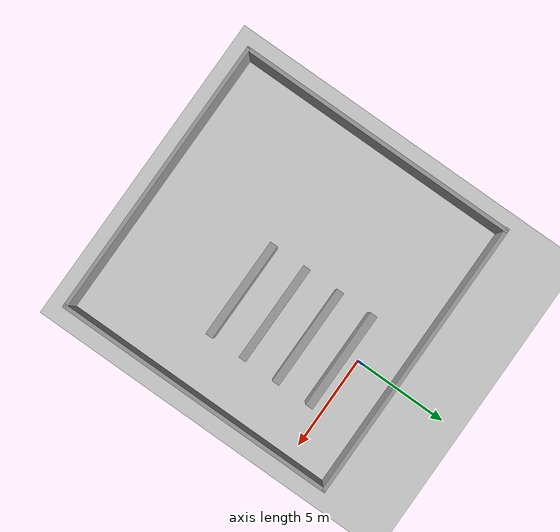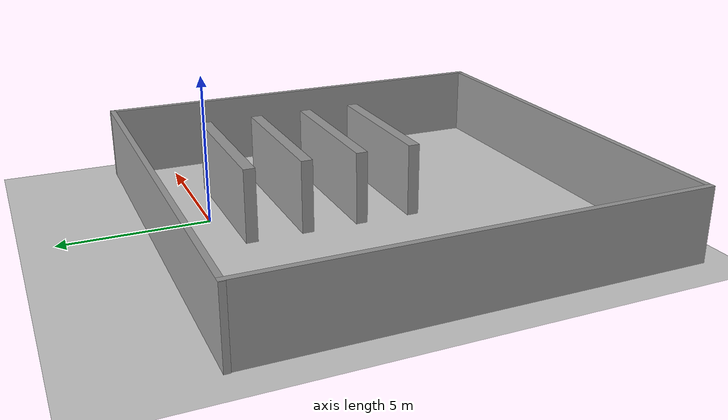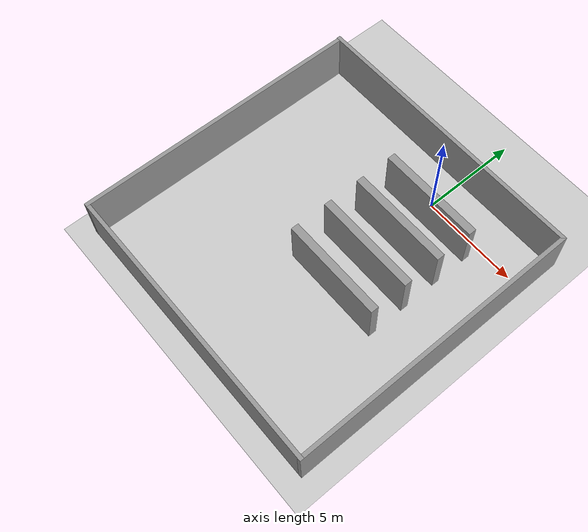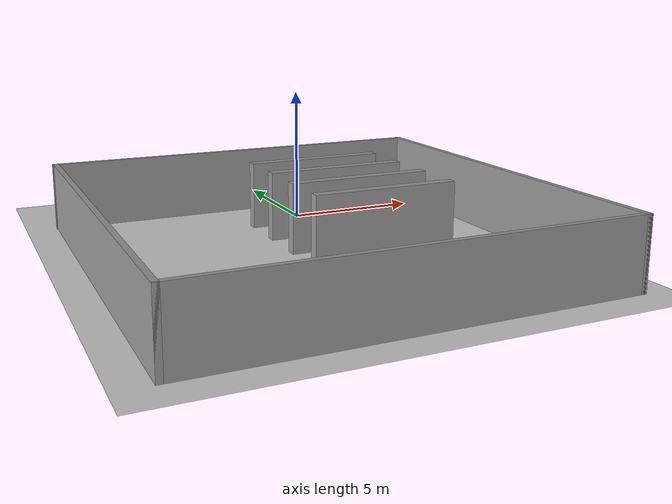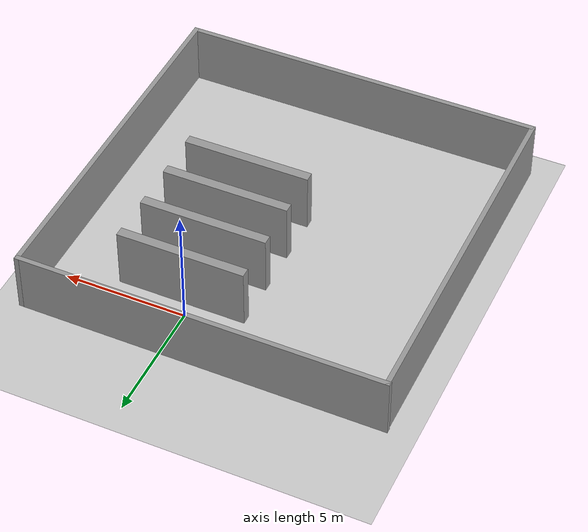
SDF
<?xml version='1.0'?>
<sdf version='1.4'>
  <world name="default">
    <!-- A global light source -->
    <include>
      <uri>model://sun</uri>
    </include>

    <physics type="ode">
      <gravity>0 0 -9.8</gravity>
      <max_step_size>0.01</max_step_size>
      <real_time_factor>1</real_time_factor>
      <real_time_update_rate>100</real_time_update_rate>
    </physics>

    <include>
      <uri>model://ground_plane</uri>
    </include>

  <model name='scene'>
    <link name='Wall_0'>
      <collision name='Wall_0_Collision'>
        <geometry>
          <box>
            <size>15 0.2 2.5</size>
          </box>
        </geometry>
        <pose>0 0 1.25 0 -0 0</pose>
      </collision>
      <visual name='Wall_0_Visual'>
        <pose>0 0 1.25 0 -0 0</pose>
        <geometry>
          <box>
            <size>15 0.2 2.5</size>
          </box>
        </geometry>
        <material>
          <script>
            <uri>file://media/materials/scripts/gazebo.material</uri>
            <name>Gazebo/Grey</name>
          </script>
        </material>
      </visual>
      <velocity_decay>
        <linear>0</linear>
        <angular>0</angular>
      </velocity_decay>
      <pose>-1.63 2 0 0 -0 3.14159</pose>
    </link>
    <link name='Wall_11'>
      <collision name='Wall_11_Collision'>
        <geometry>
          <box>
            <size>5.25 0.4 2.5</size>
          </box>
        </geometry>
        <pose>0 0 1.25 0 -0 0</pose>
      </collision>
      <visual name='Wall_11_Visual'>
        <pose>0 0 1.25 0 -0 0</pose>
        <geometry>
          <box>
            <size>5.25 0.4 2.5</size>
          </box>
        </geometry>
        <material>
          <script>
            <uri>file://media/materials/scripts/gazebo.material</uri>
            <name>Gazebo/Grey</name>
          </script>
        </material>
      </visual>
      <velocity_decay>
        <linear>0</linear>
        <angular>0</angular>
      </velocity_decay>
      <pose>0.425 -0.8 0 0 -0 0</pose>
    </link>
    <link name='Wall_13'>
      <collision name='Wall_13_Collision'>
        <geometry>
          <box>
            <size>5.25 0.4 2.5</size>
          </box>
        </geometry>
        <pose>0 0 1.25 0 -0 0</pose>
      </collision>
      <visual name='Wall_13_Visual'>
        <pose>0 0 1.25 0 -0 0</pose>
        <geometry>
          <box>
            <size>5.25 0.4 2.5</size>
          </box>
        </geometry>
        <material>
          <script>
            <uri>file://media/materials/scripts/gazebo.material</uri>
            <name>Gazebo/Grey</name>
          </script>
        </material>
      </visual>
      <velocity_decay>
        <linear>0</linear>
        <angular>0</angular>
      </velocity_decay>
      <pose>0.425 -2.704 0 0 -0 0</pose>
    </link>
    <link name='Wall_15'>
      <collision name='Wall_15_Collision'>
        <geometry>
          <box>
            <size>5.25 0.4 2.5</size>
          </box>
        </geometry>
        <pose>0 0 1.25 0 -0 0</pose>
      </collision>
      <visual name='Wall_15_Visual'>
        <pose>0 0 1.25 0 -0 0</pose>
        <geometry>
          <box>
            <size>5.25 0.4 2.5</size>
          </box>
        </geometry>
        <material>
          <script>
            <uri>file://media/materials/scripts/gazebo.material</uri>
            <name>Gazebo/Grey</name>
          </script>
        </material>
      </visual>
      <velocity_decay>
        <linear>0</linear>
        <angular>0</angular>
      </velocity_decay>
      <pose>0.425 -4.614 0 0 -0 0</pose>
    </link>
    <link name='Wall_19'>
      <collision name='Wall_19_Collision'>
        <geometry>
          <box>
            <size>5.25 0.4 2.5</size>
          </box>
        </geometry>
        <pose>0 0 1.25 0 -0 0</pose>
      </collision>
      <visual name='Wall_19_Visual'>
        <pose>0 0 1.25 0 -0 0</pose>
        <geometry>
          <box>
            <size>5.25 0.4 2.5</size>
          </box>
        </geometry>
        <material>
          <script>
            <uri>file://media/materials/scripts/gazebo.material</uri>
            <name>Gazebo/Grey</name>
          </script>
        </material>
      </visual>
      <velocity_decay>
        <linear>0</linear>
        <angular>0</angular>
      </velocity_decay>
      <pose>0.425 -6.513 0 0 -0 0</pose>
    </link>
    <link name='Wall_4'>
      <collision name='Wall_4_Collision'>
        <geometry>
          <box>
            <size>15 0.2 2.5</size>
          </box>
        </geometry>
        <pose>0 0 1.25 0 -0 0</pose>
      </collision>
      <visual name='Wall_4_Visual'>
        <pose>0 0 1.25 0 -0 0</pose>
        <geometry>
          <box>
            <size>15 0.2 2.5</size>
          </box>
        </geometry>
        <material>
          <script>
            <uri>file://media/materials/scripts/gazebo.material</uri>
            <name>Gazebo/Grey</name>
          </script>
        </material>
      </visual>
      <velocity_decay>
        <linear>0</linear>
        <angular>0</angular>
      </velocity_decay>
      <pose>-9 -5.4 0 0 0 -1.5708</pose>
    </link>
    <link name='Wall_5'>
      <collision name='Wall_5_Collision'>
        <geometry>
          <box>
            <size>15 0.2 2.5</size>
          </box>
        </geometry>
        <pose>0 0 1.25 0 -0 0</pose>
      </collision>
      <visual name='Wall_5_Visual'>
        <pose>0 0 1.25 0 -0 0</pose>
        <geometry>
          <box>
            <size>15 0.2 2.5</size>
          </box>
        </geometry>
        <material>
          <script>
            <uri>file://media/materials/scripts/gazebo.material</uri>
            <name>Gazebo/Grey</name>
          </script>
        </material>
      </visual>
      <velocity_decay>
        <linear>0</linear>
        <angular>0</angular>
      </velocity_decay>
      <pose>-1.6 -12.8 0 0 -0 0</pose>
    </link>
    <link name='Wall_6'>
      <collision name='Wall_6_Collision'>
        <geometry>
          <box>
            <size>15 0.2 2.5</size>
          </box>
        </geometry>
        <pose>0 0 1.25 0 -0 0</pose>
      </collision>
      <visual name='Wall_6_Visual'>
        <pose>0 0 1.25 0 -0 0</pose>
        <geometry>
          <box>
            <size>15 0.2 2.5</size>
          </box>
        </geometry>
        <material>
          <script>
            <uri>file://media/materials/scripts/gazebo.material</uri>
            <name>Gazebo/Grey</name>
          </script>
        </material>
      </visual>
      <velocity_decay>
        <linear>0</linear>
        <angular>0</angular>
      </velocity_decay>
      <pose>5.8 -5.4 0 0 -0 1.5708</pose>
    </link>
    <static>1</static>
  </model>

</world>
</sdf>
